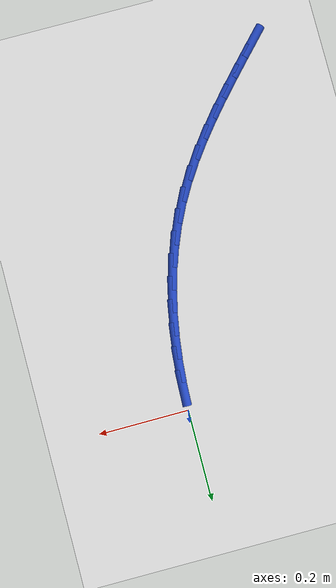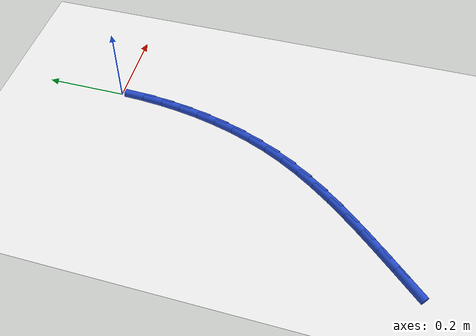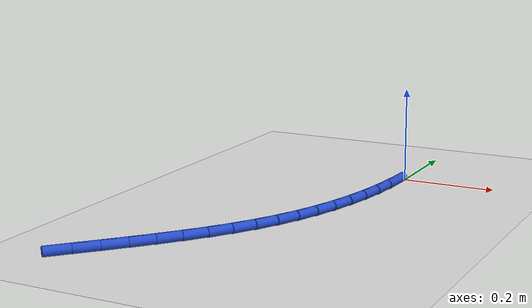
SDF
<sdf version="1.6">
 <world name="default">
  <model name="ground_plane">
   <static>1</static>
   <link name="link">
    <collision name="collision">
     <geometry><plane><normal>0 0 1</normal><size>100 100</size></plane></geometry>
     <surface><friction><ode><mu>100</mu><mu2>50</mu2></ode></friction></surface>
    </collision>
    <visual name="visual">
     <cast_shadows>0</cast_shadows>
     <geometry><plane><normal>0 0 1</normal><size>100 100</size></plane></geometry>
     <material>
      <script><uri>file://media/materials/scripts/gazebo.material</uri><name>Gazebo/WhiteGlow</name></script>
     </material>
    </visual>
   </link>
  </model>
  <model name="line">
   <link name="link_123">
    <pose>-0.34539519873738656 -0.7484223702150344 0.01 0 1.57 0.8210160121180664</pose>
    <collision name="collision">
     <geometry><cylinder><radius>0.01</radius><length>0.08</length></cylinder></geometry>
    </collision>
    <visual name="visual">
     <material>
      <script><name>Gazebo/Blue</name><uri>file://media/materials/scripts/gazebo.material</uri></script>
     </material>
     <geometry><cylinder><radius>0.01</radius><length>0.08</length></cylinder></geometry>
    </visual>
   </link>
   <link name="link_124">
    <pose>-0.3104058789720047 -0.710847372033975 0.01 0 1.57 0.8286612738863537</pose>
    <collision name="collision">
     <geometry><cylinder><radius>0.01</radius><length>0.08</length></cylinder></geometry>
    </collision>
    <visual name="visual">
     <material>
      <script><name>Gazebo/Blue</name><uri>file://media/materials/scripts/gazebo.material</uri></script>
     </material>
     <geometry><cylinder><radius>0.01</radius><length>0.08</length></cylinder></geometry>
    </visual>
   </link>
   <link name="link_125">
    <pose>-0.2760384115820663 -0.6733697206498519 0.01 0 1.57 0.8444143924594488</pose>
    <collision name="collision">
     <geometry><cylinder><radius>0.01</radius><length>0.08</length></cylinder></geometry>
    </collision>
    <visual name="visual">
     <material>
      <script><name>Gazebo/Blue</name><uri>file://media/materials/scripts/gazebo.material</uri></script>
     </material>
     <geometry><cylinder><radius>0.01</radius><length>0.08</length></cylinder></geometry>
    </visual>
   </link>
   <link name="link_126">
    <pose>-0.24260492013754875 -0.6357373117981212 0.01 0 1.57 0.8685345416533543</pose>
    <collision name="collision">
     <geometry><cylinder><radius>0.01</radius><length>0.08</length></cylinder></geometry>
    </collision>
    <visual name="visual">
     <material>
      <script><name>Gazebo/Blue</name><uri>file://media/materials/scripts/gazebo.material</uri></script>
     </material>
     <geometry><cylinder><radius>0.01</radius><length>0.08</length></cylinder></geometry>
    </visual>
   </link>
   <link name="link_127">
    <pose>-0.21041752820843093 -0.5976980412142399 0.01 0 1.57 0.901267556183429</pose>
    <collision name="collision">
     <geometry><cylinder><radius>0.01</radius><length>0.08</length></cylinder></geometry>
    </collision>
    <visual name="visual">
     <material>
      <script><name>Gazebo/Blue</name><uri>file://media/materials/scripts/gazebo.material</uri></script>
     </material>
     <geometry><cylinder><radius>0.01</radius><length>0.08</length></cylinder></geometry>
    </visual>
   </link>
   <link name="link_128">
    <pose>-0.1797883593646903 -0.5589998046336642 0.01 0 1.57 0.9427922181778444</pose>
    <collision name="collision">
     <geometry><cylinder><radius>0.01</radius><length>0.08</length></cylinder></geometry>
    </collision>
    <visual name="visual">
     <material>
      <script><name>Gazebo/Blue</name><uri>file://media/materials/scripts/gazebo.material</uri></script>
     </material>
     <geometry><cylinder><radius>0.01</radius><length>0.08</length></cylinder></geometry>
    </visual>
   </link>
   <link name="link_129">
    <pose>-0.15102953717630468 -0.5193904977918503 0.01 0 1.57 0.9931421616799625</pose>
    <collision name="collision">
     <geometry><cylinder><radius>0.01</radius><length>0.08</length></cylinder></geometry>
    </collision>
    <visual name="visual">
     <material>
      <script><name>Gazebo/Blue</name><uri>file://media/materials/scripts/gazebo.material</uri></script>
     </material>
     <geometry><cylinder><radius>0.01</radius><length>0.08</length></cylinder></geometry>
    </visual>
   </link>
   <link name="link_130">
    <pose>-0.12445318521325195 -0.4786180164242542 0.01 0 1.57 1.0521065827538227</pose>
    <collision name="collision">
     <geometry><cylinder><radius>0.01</radius><length>0.08</length></cylinder></geometry>
    </collision>
    <visual name="visual">
     <material>
      <script><name>Gazebo/Blue</name><uri>file://media/materials/scripts/gazebo.material</uri></script>
     </material>
     <geometry><cylinder><radius>0.01</radius><length>0.08</length></cylinder></geometry>
    </visual>
   </link>
   <link name="link_131">
    <pose>-0.10037142704550985 -0.4364302562663321 0.01 0 1.57 1.1175962067500969</pose>
    <collision name="collision">
     <geometry><cylinder><radius>0.01</radius><length>0.08</length></cylinder></geometry>
    </collision>
    <visual name="visual">
     <material>
      <script><name>Gazebo/Blue</name><uri>file://media/materials/scripts/gazebo.material</uri></script>
     </material>
     <geometry><cylinder><radius>0.01</radius><length>0.08</length></cylinder></geometry>
    </visual>
   </link>
   <link name="link_132">
    <pose>-0.07904116613493642 -0.392631674984729 0.01 0 1.57 1.1817265861042507</pose>
    <collision name="collision">
     <geometry><cylinder><radius>0.01</radius><length>0.08</length></cylinder></geometry>
    </collision>
    <visual name="visual">
     <material>
      <script><name>Gazebo/Blue</name><uri>file://media/materials/scripts/gazebo.material</uri></script>
     </material>
     <geometry><cylinder><radius>0.01</radius><length>0.08</length></cylinder></geometry>
    </visual>
   </link>
   <link name="link_133">
    <pose>-0.060455417761383225 -0.3472970307887707 0.01 0 1.57 1.242218422226713</pose>
    <collision name="collision">
     <geometry><cylinder><radius>0.01</radius><length>0.08</length></cylinder></geometry>
    </collision>
    <visual name="visual">
     <material>
      <script><name>Gazebo/Blue</name><uri>file://media/materials/scripts/gazebo.material</uri></script>
     </material>
     <geometry><cylinder><radius>0.01</radius><length>0.08</length></cylinder></geometry>
    </visual>
   </link>
   <link name="link_134">
    <pose>-0.04452845858586606 -0.30058173381861086 0.01 0 1.57 1.2991312877045267</pose>
    <collision name="collision">
     <geometry><cylinder><radius>0.01</radius><length>0.08</length></cylinder></geometry>
    </collision>
    <visual name="visual">
     <material>
      <script><name>Gazebo/Blue</name><uri>file://media/materials/scripts/gazebo.material</uri></script>
     </material>
     <geometry><cylinder><radius>0.01</radius><length>0.08</length></cylinder></geometry>
    </visual>
   </link>
   <link name="link_135">
    <pose>-0.0311745515246076 -0.25264120829318776 0.01 0 1.57 1.352605598126884</pose>
    <collision name="collision">
     <geometry><cylinder><radius>0.01</radius><length>0.08</length></cylinder></geometry>
    </collision>
    <visual name="visual">
     <material>
      <script><name>Gazebo/Blue</name><uri>file://media/materials/scripts/gazebo.material</uri></script>
     </material>
     <geometry><cylinder><radius>0.01</radius><length>0.08</length></cylinder></geometry>
    </visual>
   </link>
   <link name="link_136">
    <pose>-0.02030795949383111 -0.20363087843144176 0.01 0 1.57 1.4028381203062605</pose>
    <collision name="collision">
     <geometry><cylinder><radius>0.01</radius><length>0.08</length></cylinder></geometry>
    </collision>
    <visual name="visual">
     <material>
      <script><name>Gazebo/Blue</name><uri>file://media/materials/scripts/gazebo.material</uri></script>
     </material>
     <geometry><cylinder><radius>0.01</radius><length>0.08</length></cylinder></geometry>
    </visual>
   </link>
   <link name="link_137">
    <pose>-0.011842945409759244 -0.15370616845231116 0.01 0 1.57 1.45006185366766</pose>
    <collision name="collision">
     <geometry><cylinder><radius>0.01</radius><length>0.08</length></cylinder></geometry>
    </collision>
    <visual name="visual">
     <material>
      <script><name>Gazebo/Blue</name><uri>file://media/materials/scripts/gazebo.material</uri></script>
     </material>
     <geometry><cylinder><radius>0.01</radius><length>0.08</length></cylinder></geometry>
    </visual>
   </link>
   <link name="link_138">
    <pose>-0.005693772188614849 -0.10302250257473475 0.01 0 1.57 1.4945303528408014</pose>
    <collision name="collision">
     <geometry><cylinder><radius>0.01</radius><length>0.08</length></cylinder></geometry>
    </collision>
    <visual name="visual">
     <material>
      <script><name>Gazebo/Blue</name><uri>file://media/materials/scripts/gazebo.material</uri></script>
     </material>
     <geometry><cylinder><radius>0.01</radius><length>0.08</length></cylinder></geometry>
    </visual>
   </link>
   <link name="link_139">
    <pose>-0.0017747027466207977 -0.051735305017651625 0.01 0 1.57 1.5365062588975011</pose>
    <collision name="collision">
     <geometry><cylinder><radius>0.01</radius><length>0.08</length></cylinder></geometry>
    </collision>
    <visual name="visual">
     <material>
      <script><name>Gazebo/Blue</name><uri>file://media/materials/scripts/gazebo.material</uri></script>
     </material>
     <geometry><cylinder><radius>0.01</radius><length>0.08</length></cylinder></geometry>
    </visual>
   </link>
  </model>
 </world>
</sdf>
